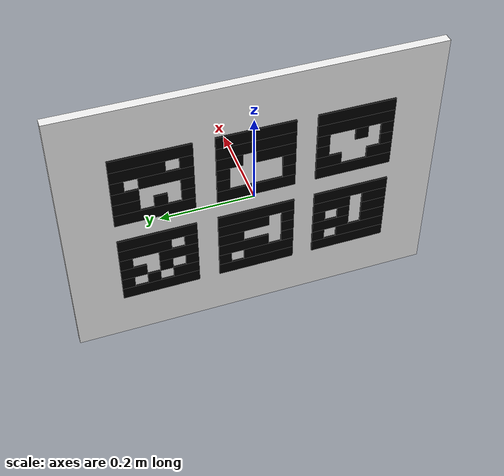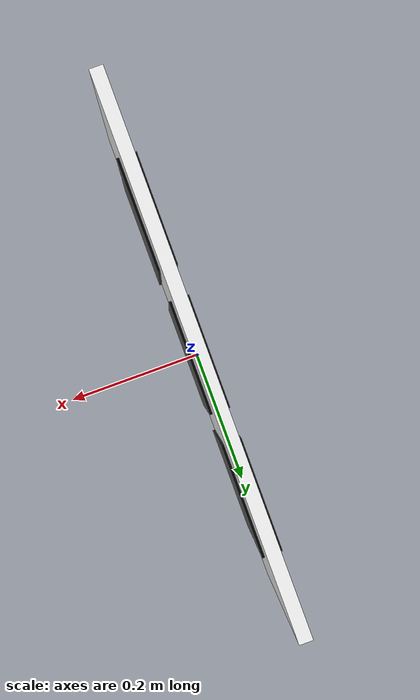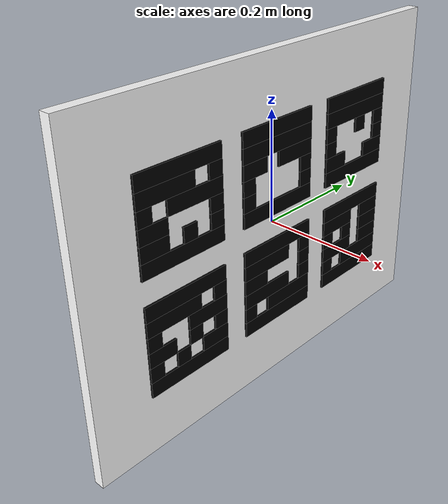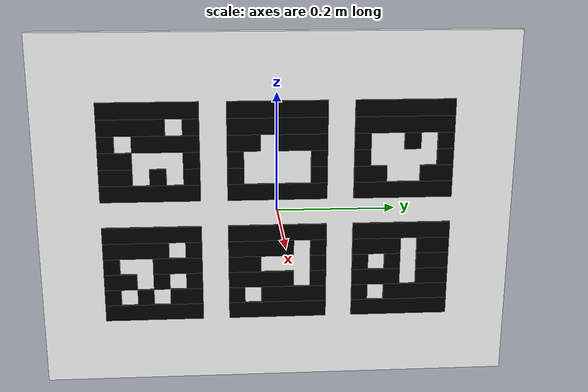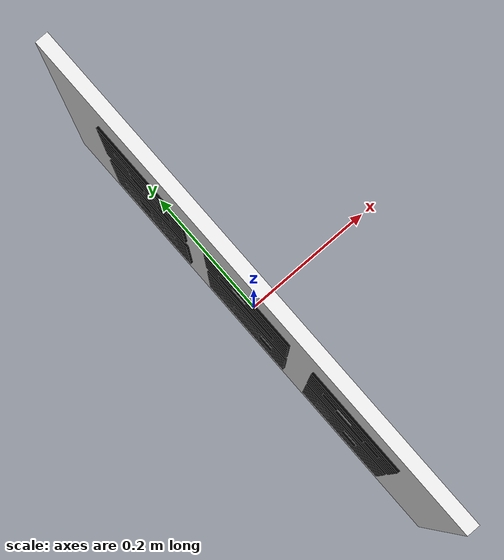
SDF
<sdf version="1.8">
 <model name="aruco_station_F2_ids_36_41">
  <static>true</static>
  <link name="target_link">
   <visual name="white_board_base">
    <cast_shadows>false</cast_shadows>
    <geometry><box><size>0.02000000 0.80000000 0.60000000</size></box></geometry>
    <material>
     <ambient>1 1 1 1</ambient>
     <diffuse>1 1 1 1</diffuse>
     <specular>0 0 0 1</specular>
     <emissive>1 1 1 1</emissive>
    </material>
   </visual>
   <visual name="black_cell_front_plus_x_id36_r0_c0_6">
    <cast_shadows>false</cast_shadows>
    <pose>0.01300000 -0.21111111 0.17500000 0.00000000 0.00000000 0.00000000</pose>
    <geometry><box><size>0.00400000 0.16666667 0.02777778</size></box></geometry>
    <material>
     <ambient>0 0 0 1</ambient>
     <diffuse>0 0 0 1</diffuse>
     <specular>0 0 0 1</specular>
     <emissive>0 0 0 1</emissive>
    </material>
   </visual>
   <visual name="black_cell_front_plus_x_id36_r1_c0_4">
    <cast_shadows>false</cast_shadows>
    <pose>0.01300000 -0.23888889 0.14722222 0.00000000 0.00000000 0.00000000</pose>
    <geometry><box><size>0.00400000 0.11111111 0.02777778</size></box></geometry>
    <material>
     <ambient>0 0 0 1</ambient>
     <diffuse>0 0 0 1</diffuse>
     <specular>0 0 0 1</specular>
     <emissive>0 0 0 1</emissive>
    </material>
   </visual>
   <visual name="black_cell_front_plus_x_id36_r1_c5_6">
    <cast_shadows>false</cast_shadows>
    <pose>0.01300000 -0.14166667 0.14722222 0.00000000 0.00000000 0.00000000</pose>
    <geometry><box><size>0.00400000 0.02777778 0.02777778</size></box></geometry>
    <material>
     <ambient>0 0 0 1</ambient>
     <diffuse>0 0 0 1</diffuse>
     <specular>0 0 0 1</specular>
     <emissive>0 0 0 1</emissive>
    </material>
   </visual>
   <visual name="black_cell_front_plus_x_id36_r2_c0_1">
    <cast_shadows>false</cast_shadows>
    <pose>0.01300000 -0.28055556 0.11944444 0.00000000 0.00000000 0.00000000</pose>
    <geometry><box><size>0.00400000 0.02777778 0.02777778</size></box></geometry>
    <material>
     <ambient>0 0 0 1</ambient>
     <diffuse>0 0 0 1</diffuse>
     <specular>0 0 0 1</specular>
     <emissive>0 0 0 1</emissive>
    </material>
   </visual>
   <visual name="black_cell_front_plus_x_id36_r2_c2_6">
    <cast_shadows>false</cast_shadows>
    <pose>0.01300000 -0.18333333 0.11944444 0.00000000 0.00000000 0.00000000</pose>
    <geometry><box><size>0.00400000 0.11111111 0.02777778</size></box></geometry>
    <material>
     <ambient>0 0 0 1</ambient>
     <diffuse>0 0 0 1</diffuse>
     <specular>0 0 0 1</specular>
     <emissive>0 0 0 1</emissive>
    </material>
   </visual>
   <visual name="black_cell_front_plus_x_id36_r3_c0_2">
    <cast_shadows>false</cast_shadows>
    <pose>0.01300000 -0.26666667 0.09166667 0.00000000 0.00000000 0.00000000</pose>
    <geometry><box><size>0.00400000 0.05555556 0.02777778</size></box></geometry>
    <material>
     <ambient>0 0 0 1</ambient>
     <diffuse>0 0 0 1</diffuse>
     <specular>0 0 0 1</specular>
     <emissive>0 0 0 1</emissive>
    </material>
   </visual>
   <visual name="black_cell_front_plus_x_id36_r3_c5_6">
    <cast_shadows>false</cast_shadows>
    <pose>0.01300000 -0.14166667 0.09166667 0.00000000 0.00000000 0.00000000</pose>
    <geometry><box><size>0.00400000 0.02777778 0.02777778</size></box></geometry>
    <material>
     <ambient>0 0 0 1</ambient>
     <diffuse>0 0 0 1</diffuse>
     <specular>0 0 0 1</specular>
     <emissive>0 0 0 1</emissive>
    </material>
   </visual>
   <visual name="black_cell_front_plus_x_id36_r4_c0_2">
    <cast_shadows>false</cast_shadows>
    <pose>0.01300000 -0.26666667 0.06388889 0.00000000 0.00000000 0.00000000</pose>
    <geometry><box><size>0.00400000 0.05555556 0.02777778</size></box></geometry>
    <material>
     <ambient>0 0 0 1</ambient>
     <diffuse>0 0 0 1</diffuse>
     <specular>0 0 0 1</specular>
     <emissive>0 0 0 1</emissive>
    </material>
   </visual>
   <visual name="black_cell_front_plus_x_id36_r4_c3_4">
    <cast_shadows>false</cast_shadows>
    <pose>0.01300000 -0.19722222 0.06388889 0.00000000 0.00000000 0.00000000</pose>
    <geometry><box><size>0.00400000 0.02777778 0.02777778</size></box></geometry>
    <material>
     <ambient>0 0 0 1</ambient>
     <diffuse>0 0 0 1</diffuse>
     <specular>0 0 0 1</specular>
     <emissive>0 0 0 1</emissive>
    </material>
   </visual>
   <visual name="black_cell_front_plus_x_id36_r4_c5_6">
    <cast_shadows>false</cast_shadows>
    <pose>0.01300000 -0.14166667 0.06388889 0.00000000 0.00000000 0.00000000</pose>
    <geometry><box><size>0.00400000 0.02777778 0.02777778</size></box></geometry>
    <material>
     <ambient>0 0 0 1</ambient>
     <diffuse>0 0 0 1</diffuse>
     <specular>0 0 0 1</specular>
     <emissive>0 0 0 1</emissive>
    </material>
   </visual>
   <visual name="black_cell_front_plus_x_id36_r5_c0_6">
    <cast_shadows>false</cast_shadows>
    <pose>0.01300000 -0.21111111 0.03611111 0.00000000 0.00000000 0.00000000</pose>
    <geometry><box><size>0.00400000 0.16666667 0.02777778</size></box></geometry>
    <material>
     <ambient>0 0 0 1</ambient>
     <diffuse>0 0 0 1</diffuse>
     <specular>0 0 0 1</specular>
     <emissive>0 0 0 1</emissive>
    </material>
   </visual>
   <visual name="black_cell_back_minus_x_id36_r0_c0_6">
    <cast_shadows>false</cast_shadows>
    <pose>-0.01300000 0.21111111 0.17500000 0.00000000 0.00000000 0.00000000</pose>
    <geometry><box><size>0.00400000 0.16666667 0.02777778</size></box></geometry>
    <material>
     <ambient>0 0 0 1</ambient>
     <diffuse>0 0 0 1</diffuse>
     <specular>0 0 0 1</specular>
     <emissive>0 0 0 1</emissive>
    </material>
   </visual>
   <visual name="black_cell_back_minus_x_id36_r1_c0_4">
    <cast_shadows>false</cast_shadows>
    <pose>-0.01300000 0.23888889 0.14722222 0.00000000 0.00000000 0.00000000</pose>
    <geometry><box><size>0.00400000 0.11111111 0.02777778</size></box></geometry>
    <material>
     <ambient>0 0 0 1</ambient>
     <diffuse>0 0 0 1</diffuse>
     <specular>0 0 0 1</specular>
     <emissive>0 0 0 1</emissive>
    </material>
   </visual>
   <visual name="black_cell_back_minus_x_id36_r1_c5_6">
    <cast_shadows>false</cast_shadows>
    <pose>-0.01300000 0.14166667 0.14722222 0.00000000 0.00000000 0.00000000</pose>
    <geometry><box><size>0.00400000 0.02777778 0.02777778</size></box></geometry>
    <material>
     <ambient>0 0 0 1</ambient>
     <diffuse>0 0 0 1</diffuse>
     <specular>0 0 0 1</specular>
     <emissive>0 0 0 1</emissive>
    </material>
   </visual>
   <visual name="black_cell_back_minus_x_id36_r2_c0_1">
    <cast_shadows>false</cast_shadows>
    <pose>-0.01300000 0.28055556 0.11944444 0.00000000 0.00000000 0.00000000</pose>
    <geometry><box><size>0.00400000 0.02777778 0.02777778</size></box></geometry>
    <material>
     <ambient>0 0 0 1</ambient>
     <diffuse>0 0 0 1</diffuse>
     <specular>0 0 0 1</specular>
     <emissive>0 0 0 1</emissive>
    </material>
   </visual>
   <visual name="black_cell_back_minus_x_id36_r2_c2_6">
    <cast_shadows>false</cast_shadows>
    <pose>-0.01300000 0.18333333 0.11944444 0.00000000 0.00000000 0.00000000</pose>
    <geometry><box><size>0.00400000 0.11111111 0.02777778</size></box></geometry>
    <material>
     <ambient>0 0 0 1</ambient>
     <diffuse>0 0 0 1</diffuse>
     <specular>0 0 0 1</specular>
     <emissive>0 0 0 1</emissive>
    </material>
   </visual>
   <visual name="black_cell_back_minus_x_id36_r3_c0_2">
    <cast_shadows>false</cast_shadows>
    <pose>-0.01300000 0.26666667 0.09166667 0.00000000 0.00000000 0.00000000</pose>
    <geometry><box><size>0.00400000 0.05555556 0.02777778</size></box></geometry>
    <material>
     <ambient>0 0 0 1</ambient>
     <diffuse>0 0 0 1</diffuse>
     <specular>0 0 0 1</specular>
     <emissive>0 0 0 1</emissive>
    </material>
   </visual>
   <visual name="black_cell_back_minus_x_id36_r3_c5_6">
    <cast_shadows>false</cast_shadows>
    <pose>-0.01300000 0.14166667 0.09166667 0.00000000 0.00000000 0.00000000</pose>
    <geometry><box><size>0.00400000 0.02777778 0.02777778</size></box></geometry>
    <material>
     <ambient>0 0 0 1</ambient>
     <diffuse>0 0 0 1</diffuse>
     <specular>0 0 0 1</specular>
     <emissive>0 0 0 1</emissive>
    </material>
   </visual>
   <visual name="black_cell_back_minus_x_id36_r4_c0_2">
    <cast_shadows>false</cast_shadows>
    <pose>-0.01300000 0.26666667 0.06388889 0.00000000 0.00000000 0.00000000</pose>
    <geometry><box><size>0.00400000 0.05555556 0.02777778</size></box></geometry>
    <material>
     <ambient>0 0 0 1</ambient>
     <diffuse>0 0 0 1</diffuse>
     <specular>0 0 0 1</specular>
     <emissive>0 0 0 1</emissive>
    </material>
   </visual>
   <visual name="black_cell_back_minus_x_id36_r4_c3_4">
    <cast_shadows>false</cast_shadows>
    <pose>-0.01300000 0.19722222 0.06388889 0.00000000 0.00000000 0.00000000</pose>
    <geometry><box><size>0.00400000 0.02777778 0.02777778</size></box></geometry>
    <material>
     <ambient>0 0 0 1</ambient>
     <diffuse>0 0 0 1</diffuse>
     <specular>0 0 0 1</specular>
     <emissive>0 0 0 1</emissive>
    </material>
   </visual>
   <visual name="black_cell_back_minus_x_id36_r4_c5_6">
    <cast_shadows>false</cast_shadows>
    <pose>-0.01300000 0.14166667 0.06388889 0.00000000 0.00000000 0.00000000</pose>
    <geometry><box><size>0.00400000 0.02777778 0.02777778</size></box></geometry>
    <material>
     <ambient>0 0 0 1</ambient>
     <diffuse>0 0 0 1</diffuse>
     <specular>0 0 0 1</specular>
     <emissive>0 0 0 1</emissive>
    </material>
   </visual>
   <visual name="black_cell_back_minus_x_id36_r5_c0_6">
    <cast_shadows>false</cast_shadows>
    <pose>-0.01300000 0.21111111 0.03611111 0.00000000 0.00000000 0.00000000</pose>
    <geometry><box><size>0.00400000 0.16666667 0.02777778</size></box></geometry>
    <material>
     <ambient>0 0 0 1</ambient>
     <diffuse>0 0 0 1</diffuse>
     <specular>0 0 0 1</specular>
     <emissive>0 0 0 1</emissive>
    </material>
   </visual>
   <visual name="black_cell_front_plus_x_id37_r0_c0_6">
    <cast_shadows>false</cast_shadows>
    <pose>0.01300000 -0.00000000 0.17500000 0.00000000 0.00000000 0.00000000</pose>
    <geometry><box><size>0.00400000 0.16666667 0.02777778</size></box></geometry>
    <material>
     <ambient>0 0 0 1</ambient>
     <diffuse>0 0 0 1</diffuse>
     <specular>0 0 0 1</specular>
     <emissive>0 0 0 1</emissive>
    </material>
   </visual>
   <visual name="black_cell_front_plus_x_id37_r1_c0_6">
    <cast_shadows>false</cast_shadows>
    <pose>0.01300000 -0.00000000 0.14722222 0.00000000 0.00000000 0.00000000</pose>
    <geometry><box><size>0.00400000 0.16666667 0.02777778</size></box></geometry>
    <material>
     <ambient>0 0 0 1</ambient>
     <diffuse>0 0 0 1</diffuse>
     <specular>0 0 0 1</specular>
     <emissive>0 0 0 1</emissive>
    </material>
   </visual>
   <visual name="black_cell_front_plus_x_id37_r2_c0_2">
    <cast_shadows>false</cast_shadows>
    <pose>0.01300000 -0.05555556 0.11944444 0.00000000 0.00000000 0.00000000</pose>
    <geometry><box><size>0.00400000 0.05555556 0.02777778</size></box></geometry>
    <material>
     <ambient>0 0 0 1</ambient>
     <diffuse>0 0 0 1</diffuse>
     <specular>0 0 0 1</specular>
     <emissive>0 0 0 1</emissive>
    </material>
   </visual>
   <visual name="black_cell_front_plus_x_id37_r2_c3_6">
    <cast_shadows>false</cast_shadows>
    <pose>0.01300000 0.04166667 0.11944444 0.00000000 0.00000000 0.00000000</pose>
    <geometry><box><size>0.00400000 0.08333333 0.02777778</size></box></geometry>
    <material>
     <ambient>0 0 0 1</ambient>
     <diffuse>0 0 0 1</diffuse>
     <specular>0 0 0 1</specular>
     <emissive>0 0 0 1</emissive>
    </material>
   </visual>
   <visual name="black_cell_front_plus_x_id37_r3_c0_1">
    <cast_shadows>false</cast_shadows>
    <pose>0.01300000 -0.06944444 0.09166667 0.00000000 0.00000000 0.00000000</pose>
    <geometry><box><size>0.00400000 0.02777778 0.02777778</size></box></geometry>
    <material>
     <ambient>0 0 0 1</ambient>
     <diffuse>0 0 0 1</diffuse>
     <specular>0 0 0 1</specular>
     <emissive>0 0 0 1</emissive>
    </material>
   </visual>
   <visual name="black_cell_front_plus_x_id37_r3_c5_6">
    <cast_shadows>false</cast_shadows>
    <pose>0.01300000 0.06944444 0.09166667 0.00000000 0.00000000 0.00000000</pose>
    <geometry><box><size>0.00400000 0.02777778 0.02777778</size></box></geometry>
    <material>
     <ambient>0 0 0 1</ambient>
     <diffuse>0 0 0 1</diffuse>
     <specular>0 0 0 1</specular>
     <emissive>0 0 0 1</emissive>
    </material>
   </visual>
   <visual name="black_cell_front_plus_x_id37_r4_c0_1">
    <cast_shadows>false</cast_shadows>
    <pose>0.01300000 -0.06944444 0.06388889 0.00000000 0.00000000 0.00000000</pose>
    <geometry><box><size>0.00400000 0.02777778 0.02777778</size></box></geometry>
    <material>
     <ambient>0 0 0 1</ambient>
     <diffuse>0 0 0 1</diffuse>
     <specular>0 0 0 1</specular>
     <emissive>0 0 0 1</emissive>
    </material>
   </visual>
   <visual name="black_cell_front_plus_x_id37_r4_c5_6">
    <cast_shadows>false</cast_shadows>
    <pose>0.01300000 0.06944444 0.06388889 0.00000000 0.00000000 0.00000000</pose>
    <geometry><box><size>0.00400000 0.02777778 0.02777778</size></box></geometry>
    <material>
     <ambient>0 0 0 1</ambient>
     <diffuse>0 0 0 1</diffuse>
     <specular>0 0 0 1</specular>
     <emissive>0 0 0 1</emissive>
    </material>
   </visual>
   <visual name="black_cell_front_plus_x_id37_r5_c0_6">
    <cast_shadows>false</cast_shadows>
    <pose>0.01300000 -0.00000000 0.03611111 0.00000000 0.00000000 0.00000000</pose>
    <geometry><box><size>0.00400000 0.16666667 0.02777778</size></box></geometry>
    <material>
     <ambient>0 0 0 1</ambient>
     <diffuse>0 0 0 1</diffuse>
     <specular>0 0 0 1</specular>
     <emissive>0 0 0 1</emissive>
    </material>
   </visual>
   <visual name="black_cell_back_minus_x_id37_r0_c0_6">
    <cast_shadows>false</cast_shadows>
    <pose>-0.01300000 0.00000000 0.17500000 0.00000000 0.00000000 0.00000000</pose>
    <geometry><box><size>0.00400000 0.16666667 0.02777778</size></box></geometry>
    <material>
     <ambient>0 0 0 1</ambient>
     <diffuse>0 0 0 1</diffuse>
     <specular>0 0 0 1</specular>
     <emissive>0 0 0 1</emissive>
    </material>
   </visual>
   <visual name="black_cell_back_minus_x_id37_r1_c0_6">
    <cast_shadows>false</cast_shadows>
    <pose>-0.01300000 0.00000000 0.14722222 0.00000000 0.00000000 0.00000000</pose>
    <geometry><box><size>0.00400000 0.16666667 0.02777778</size></box></geometry>
    <material>
     <ambient>0 0 0 1</ambient>
     <diffuse>0 0 0 1</diffuse>
     <specular>0 0 0 1</specular>
     <emissive>0 0 0 1</emissive>
    </material>
   </visual>
   <visual name="black_cell_back_minus_x_id37_r2_c0_2">
    <cast_shadows>false</cast_shadows>
    <pose>-0.01300000 0.05555556 0.11944444 0.00000000 0.00000000 0.00000000</pose>
    <geometry><box><size>0.00400000 0.05555556 0.02777778</size></box></geometry>
    <material>
     <ambient>0 0 0 1</ambient>
     <diffuse>0 0 0 1</diffuse>
     <specular>0 0 0 1</specular>
     <emissive>0 0 0 1</emissive>
    </material>
   </visual>
   <visual name="black_cell_back_minus_x_id37_r2_c3_6">
    <cast_shadows>false</cast_shadows>
    <pose>-0.01300000 -0.04166667 0.11944444 0.00000000 0.00000000 0.00000000</pose>
    <geometry><box><size>0.00400000 0.08333333 0.02777778</size></box></geometry>
    <material>
     <ambient>0 0 0 1</ambient>
     <diffuse>0 0 0 1</diffuse>
     <specular>0 0 0 1</specular>
     <emissive>0 0 0 1</emissive>
    </material>
   </visual>
   <visual name="black_cell_back_minus_x_id37_r3_c0_1">
    <cast_shadows>false</cast_shadows>
    <pose>-0.01300000 0.06944444 0.09166667 0.00000000 0.00000000 0.00000000</pose>
    <geometry><box><size>0.00400000 0.02777778 0.02777778</size></box></geometry>
    <material>
     <ambient>0 0 0 1</ambient>
     <diffuse>0 0 0 1</diffuse>
     <specular>0 0 0 1</specular>
     <emissive>0 0 0 1</emissive>
    </material>
   </visual>
   <visual name="black_cell_back_minus_x_id37_r3_c5_6">
    <cast_shadows>false</cast_shadows>
    <pose>-0.01300000 -0.06944444 0.09166667 0.00000000 0.00000000 0.00000000</pose>
    <geometry><box><size>0.00400000 0.02777778 0.02777778</size></box></geometry>
    <material>
     <ambient>0 0 0 1</ambient>
     <diffuse>0 0 0 1</diffuse>
     <specular>0 0 0 1</specular>
     <emissive>0 0 0 1</emissive>
    </material>
   </visual>
   <visual name="black_cell_back_minus_x_id37_r4_c0_1">
    <cast_shadows>false</cast_shadows>
    <pose>-0.01300000 0.06944444 0.06388889 0.00000000 0.00000000 0.00000000</pose>
    <geometry><box><size>0.00400000 0.02777778 0.02777778</size></box></geometry>
    <material>
     <ambient>0 0 0 1</ambient>
     <diffuse>0 0 0 1</diffuse>
     <specular>0 0 0 1</specular>
     <emissive>0 0 0 1</emissive>
    </material>
   </visual>
   <visual name="black_cell_back_minus_x_id37_r4_c5_6">
    <cast_shadows>false</cast_shadows>
    <pose>-0.01300000 -0.06944444 0.06388889 0.00000000 0.00000000 0.00000000</pose>
    <geometry><box><size>0.00400000 0.02777778 0.02777778</size></box></geometry>
    <material>
     <ambient>0 0 0 1</ambient>
     <diffuse>0 0 0 1</diffuse>
     <specular>0 0 0 1</specular>
     <emissive>0 0 0 1</emissive>
    </material>
   </visual>
   <visual name="black_cell_back_minus_x_id37_r5_c0_6">
    <cast_shadows>false</cast_shadows>
    <pose>-0.01300000 0.00000000 0.03611111 0.00000000 0.00000000 0.00000000</pose>
    <geometry><box><size>0.00400000 0.16666667 0.02777778</size></box></geometry>
    <material>
     <ambient>0 0 0 1</ambient>
     <diffuse>0 0 0 1</diffuse>
     <specular>0 0 0 1</specular>
     <emissive>0 0 0 1</emissive>
    </material>
   </visual>
   <visual name="black_cell_front_plus_x_id38_r0_c0_6">
    <cast_shadows>false</cast_shadows>
    <pose>0.01300000 0.21111111 0.17500000 0.00000000 0.00000000 0.00000000</pose>
    <geometry><box><size>0.00400000 0.16666667 0.02777778</size></box></geometry>
    <material>
     <ambient>0 0 0 1</ambient>
     <diffuse>0 0 0 1</diffuse>
     <specular>0 0 0 1</specular>
     <emissive>0 0 0 1</emissive>
    </material>
   </visual>
   <visual name="black_cell_front_plus_x_id38_r1_c0_6">
    <cast_shadows>false</cast_shadows>
    <pose>0.01300000 0.21111111 0.14722222 0.00000000 0.00000000 0.00000000</pose>
    <geometry><box><size>0.00400000 0.16666667 0.02777778</size></box></geometry>
    <material>
     <ambient>0 0 0 1</ambient>
     <diffuse>0 0 0 1</diffuse>
     <specular>0 0 0 1</specular>
     <emissive>0 0 0 1</emissive>
    </material>
   </visual>
   <visual name="black_cell_front_plus_x_id38_r2_c0_1">
    <cast_shadows>false</cast_shadows>
    <pose>0.01300000 0.14166667 0.11944444 0.00000000 0.00000000 0.00000000</pose>
    <geometry><box><size>0.00400000 0.02777778 0.02777778</size></box></geometry>
    <material>
     <ambient>0 0 0 1</ambient>
     <diffuse>0 0 0 1</diffuse>
     <specular>0 0 0 1</specular>
     <emissive>0 0 0 1</emissive>
    </material>
   </visual>
   <visual name="black_cell_front_plus_x_id38_r2_c3_4">
    <cast_shadows>false</cast_shadows>
    <pose>0.01300000 0.22500000 0.11944444 0.00000000 0.00000000 0.00000000</pose>
    <geometry><box><size>0.00400000 0.02777778 0.02777778</size></box></geometry>
    <material>
     <ambient>0 0 0 1</ambient>
     <diffuse>0 0 0 1</diffuse>
     <specular>0 0 0 1</specular>
     <emissive>0 0 0 1</emissive>
    </material>
   </visual>
   <visual name="black_cell_front_plus_x_id38_r2_c5_6">
    <cast_shadows>false</cast_shadows>
    <pose>0.01300000 0.28055556 0.11944444 0.00000000 0.00000000 0.00000000</pose>
    <geometry><box><size>0.00400000 0.02777778 0.02777778</size></box></geometry>
    <material>
     <ambient>0 0 0 1</ambient>
     <diffuse>0 0 0 1</diffuse>
     <specular>0 0 0 1</specular>
     <emissive>0 0 0 1</emissive>
    </material>
   </visual>
   <visual name="black_cell_front_plus_x_id38_r3_c0_1">
    <cast_shadows>false</cast_shadows>
    <pose>0.01300000 0.14166667 0.09166667 0.00000000 0.00000000 0.00000000</pose>
    <geometry><box><size>0.00400000 0.02777778 0.02777778</size></box></geometry>
    <material>
     <ambient>0 0 0 1</ambient>
     <diffuse>0 0 0 1</diffuse>
     <specular>0 0 0 1</specular>
     <emissive>0 0 0 1</emissive>
    </material>
   </visual>
   <visual name="black_cell_front_plus_x_id38_r3_c5_6">
    <cast_shadows>false</cast_shadows>
    <pose>0.01300000 0.28055556 0.09166667 0.00000000 0.00000000 0.00000000</pose>
    <geometry><box><size>0.00400000 0.02777778 0.02777778</size></box></geometry>
    <material>
     <ambient>0 0 0 1</ambient>
     <diffuse>0 0 0 1</diffuse>
     <specular>0 0 0 1</specular>
     <emissive>0 0 0 1</emissive>
    </material>
   </visual>
   <visual name="black_cell_front_plus_x_id38_r4_c0_2">
    <cast_shadows>false</cast_shadows>
    <pose>0.01300000 0.15555556 0.06388889 0.00000000 0.00000000 0.00000000</pose>
    <geometry><box><size>0.00400000 0.05555556 0.02777778</size></box></geometry>
    <material>
     <ambient>0 0 0 1</ambient>
     <diffuse>0 0 0 1</diffuse>
     <specular>0 0 0 1</specular>
     <emissive>0 0 0 1</emissive>
    </material>
   </visual>
   <visual name="black_cell_front_plus_x_id38_r4_c4_6">
    <cast_shadows>false</cast_shadows>
    <pose>0.01300000 0.26666667 0.06388889 0.00000000 0.00000000 0.00000000</pose>
    <geometry><box><size>0.00400000 0.05555556 0.02777778</size></box></geometry>
    <material>
     <ambient>0 0 0 1</ambient>
     <diffuse>0 0 0 1</diffuse>
     <specular>0 0 0 1</specular>
     <emissive>0 0 0 1</emissive>
    </material>
   </visual>
   <visual name="black_cell_front_plus_x_id38_r5_c0_6">
    <cast_shadows>false</cast_shadows>
    <pose>0.01300000 0.21111111 0.03611111 0.00000000 0.00000000 0.00000000</pose>
    <geometry><box><size>0.00400000 0.16666667 0.02777778</size></box></geometry>
    <material>
     <ambient>0 0 0 1</ambient>
     <diffuse>0 0 0 1</diffuse>
     <specular>0 0 0 1</specular>
     <emissive>0 0 0 1</emissive>
    </material>
   </visual>
   <visual name="black_cell_back_minus_x_id38_r0_c0_6">
    <cast_shadows>false</cast_shadows>
    <pose>-0.01300000 -0.21111111 0.17500000 0.00000000 0.00000000 0.00000000</pose>
    <geometry><box><size>0.00400000 0.16666667 0.02777778</size></box></geometry>
    <material>
     <ambient>0 0 0 1</ambient>
     <diffuse>0 0 0 1</diffuse>
     <specular>0 0 0 1</specular>
     <emissive>0 0 0 1</emissive>
    </material>
   </visual>
   <visual name="black_cell_back_minus_x_id38_r1_c0_6">
    <cast_shadows>false</cast_shadows>
    <pose>-0.01300000 -0.21111111 0.14722222 0.00000000 0.00000000 0.00000000</pose>
    <geometry><box><size>0.00400000 0.16666667 0.02777778</size></box></geometry>
    <material>
     <ambient>0 0 0 1</ambient>
     <diffuse>0 0 0 1</diffuse>
     <specular>0 0 0 1</specular>
     <emissive>0 0 0 1</emissive>
    </material>
   </visual>
   <visual name="black_cell_back_minus_x_id38_r2_c0_1">
    <cast_shadows>false</cast_shadows>
    <pose>-0.01300000 -0.14166667 0.11944444 0.00000000 0.00000000 0.00000000</pose>
    <geometry><box><size>0.00400000 0.02777778 0.02777778</size></box></geometry>
    <material>
     <ambient>0 0 0 1</ambient>
     <diffuse>0 0 0 1</diffuse>
     <specular>0 0 0 1</specular>
     <emissive>0 0 0 1</emissive>
    </material>
   </visual>
   <visual name="black_cell_back_minus_x_id38_r2_c3_4">
    <cast_shadows>false</cast_shadows>
    <pose>-0.01300000 -0.22500000 0.11944444 0.00000000 0.00000000 0.00000000</pose>
    <geometry><box><size>0.00400000 0.02777778 0.02777778</size></box></geometry>
    <material>
     <ambient>0 0 0 1</ambient>
     <diffuse>0 0 0 1</diffuse>
     <specular>0 0 0 1</specular>
     <emissive>0 0 0 1</emissive>
    </material>
   </visual>
   <visual name="black_cell_back_minus_x_id38_r2_c5_6">
    <cast_shadows>false</cast_shadows>
    <pose>-0.01300000 -0.28055556 0.11944444 0.00000000 0.00000000 0.00000000</pose>
    <geometry><box><size>0.00400000 0.02777778 0.02777778</size></box></geometry>
    <material>
     <ambient>0 0 0 1</ambient>
     <diffuse>0 0 0 1</diffuse>
     <specular>0 0 0 1</specular>
     <emissive>0 0 0 1</emissive>
    </material>
   </visual>
   <visual name="black_cell_back_minus_x_id38_r3_c0_1">
    <cast_shadows>false</cast_shadows>
    <pose>-0.01300000 -0.14166667 0.09166667 0.00000000 0.00000000 0.00000000</pose>
    <geometry><box><size>0.00400000 0.02777778 0.02777778</size></box></geometry>
    <material>
     <ambient>0 0 0 1</ambient>
     <diffuse>0 0 0 1</diffuse>
     <specular>0 0 0 1</specular>
     <emissive>0 0 0 1</emissive>
    </material>
   </visual>
   <visual name="black_cell_back_minus_x_id38_r3_c5_6">
    <cast_shadows>false</cast_shadows>
    <pose>-0.01300000 -0.28055556 0.09166667 0.00000000 0.00000000 0.00000000</pose>
    <geometry><box><size>0.00400000 0.02777778 0.02777778</size></box></geometry>
    <material>
     <ambient>0 0 0 1</ambient>
     <diffuse>0 0 0 1</diffuse>
     <specular>0 0 0 1</specular>
     <emissive>0 0 0 1</emissive>
    </material>
   </visual>
   <visual name="black_cell_back_minus_x_id38_r4_c0_2">
    <cast_shadows>false</cast_shadows>
    <pose>-0.01300000 -0.15555556 0.06388889 0.00000000 0.00000000 0.00000000</pose>
    <geometry><box><size>0.00400000 0.05555556 0.02777778</size></box></geometry>
    <material>
     <ambient>0 0 0 1</ambient>
     <diffuse>0 0 0 1</diffuse>
     <specular>0 0 0 1</specular>
     <emissive>0 0 0 1</emissive>
    </material>
   </visual>
   <visual name="black_cell_back_minus_x_id38_r4_c4_6">
    <cast_shadows>false</cast_shadows>
    <pose>-0.01300000 -0.26666667 0.06388889 0.00000000 0.00000000 0.00000000</pose>
    <geometry><box><size>0.00400000 0.05555556 0.02777778</size></box></geometry>
    <material>
     <ambient>0 0 0 1</ambient>
     <diffuse>0 0 0 1</diffuse>
     <specular>0 0 0 1</specular>
     <emissive>0 0 0 1</emissive>
    </material>
   </visual>
   <visual name="black_cell_back_minus_x_id38_r5_c0_6">
    <cast_shadows>false</cast_shadows>
    <pose>-0.01300000 -0.21111111 0.03611111 0.00000000 0.00000000 0.00000000</pose>
    <geometry><box><size>0.00400000 0.16666667 0.02777778</size></box></geometry>
    <material>
     <ambient>0 0 0 1</ambient>
     <diffuse>0 0 0 1</diffuse>
     <specular>0 0 0 1</specular>
     <emissive>0 0 0 1</emissive>
    </material>
   </visual>
   <visual name="black_cell_front_plus_x_id39_r0_c0_6">
    <cast_shadows>false</cast_shadows>
    <pose>0.01300000 -0.21111111 -0.03611111 0.00000000 0.00000000 0.00000000</pose>
    <geometry><box><size>0.00400000 0.16666667 0.02777778</size></box></geometry>
    <material>
     <ambient>0 0 0 1</ambient>
     <diffuse>0 0 0 1</diffuse>
     <specular>0 0 0 1</specular>
     <emissive>0 0 0 1</emissive>
    </material>
   </visual>
   <visual name="black_cell_front_plus_x_id39_r1_c0_4">
    <cast_shadows>false</cast_shadows>
    <pose>0.01300000 -0.23888889 -0.06388889 0.00000000 0.00000000 0.00000000</pose>
    <geometry><box><size>0.00400000 0.11111111 0.02777778</size></box></geometry>
    <material>
     <ambient>0 0 0 1</ambient>
     <diffuse>0 0 0 1</diffuse>
     <specular>0 0 0 1</specular>
     <emissive>0 0 0 1</emissive>
    </material>
   </visual>
   <visual name="black_cell_front_plus_x_id39_r1_c5_6">
    <cast_shadows>false</cast_shadows>
    <pose>0.01300000 -0.14166667 -0.06388889 0.00000000 0.00000000 0.00000000</pose>
    <geometry><box><size>0.00400000 0.02777778 0.02777778</size></box></geometry>
    <material>
     <ambient>0 0 0 1</ambient>
     <diffuse>0 0 0 1</diffuse>
     <specular>0 0 0 1</specular>
     <emissive>0 0 0 1</emissive>
    </material>
   </visual>
   <visual name="black_cell_front_plus_x_id39_r2_c0_1">
    <cast_shadows>false</cast_shadows>
    <pose>0.01300000 -0.28055556 -0.09166667 0.00000000 0.00000000 0.00000000</pose>
    <geometry><box><size>0.00400000 0.02777778 0.02777778</size></box></geometry>
    <material>
     <ambient>0 0 0 1</ambient>
     <diffuse>0 0 0 1</diffuse>
     <specular>0 0 0 1</specular>
     <emissive>0 0 0 1</emissive>
    </material>
   </visual>
   <visual name="black_cell_front_plus_x_id39_r2_c3_6">
    <cast_shadows>false</cast_shadows>
    <pose>0.01300000 -0.16944444 -0.09166667 0.00000000 0.00000000 0.00000000</pose>
    <geometry><box><size>0.00400000 0.08333333 0.02777778</size></box></geometry>
    <material>
     <ambient>0 0 0 1</ambient>
     <diffuse>0 0 0 1</diffuse>
     <specular>0 0 0 1</specular>
     <emissive>0 0 0 1</emissive>
    </material>
   </visual>
   <visual name="black_cell_front_plus_x_id39_r3_c0_2">
    <cast_shadows>false</cast_shadows>
    <pose>0.01300000 -0.26666667 -0.11944444 0.00000000 0.00000000 0.00000000</pose>
    <geometry><box><size>0.00400000 0.05555556 0.02777778</size></box></geometry>
    <material>
     <ambient>0 0 0 1</ambient>
     <diffuse>0 0 0 1</diffuse>
     <specular>0 0 0 1</specular>
     <emissive>0 0 0 1</emissive>
    </material>
   </visual>
   <visual name="black_cell_front_plus_x_id39_r3_c3_4">
    <cast_shadows>false</cast_shadows>
    <pose>0.01300000 -0.19722222 -0.11944444 0.00000000 0.00000000 0.00000000</pose>
    <geometry><box><size>0.00400000 0.02777778 0.02777778</size></box></geometry>
    <material>
     <ambient>0 0 0 1</ambient>
     <diffuse>0 0 0 1</diffuse>
     <specular>0 0 0 1</specular>
     <emissive>0 0 0 1</emissive>
    </material>
   </visual>
   <visual name="black_cell_front_plus_x_id39_r3_c5_6">
    <cast_shadows>false</cast_shadows>
    <pose>0.01300000 -0.14166667 -0.11944444 0.00000000 0.00000000 0.00000000</pose>
    <geometry><box><size>0.00400000 0.02777778 0.02777778</size></box></geometry>
    <material>
     <ambient>0 0 0 1</ambient>
     <diffuse>0 0 0 1</diffuse>
     <specular>0 0 0 1</specular>
     <emissive>0 0 0 1</emissive>
    </material>
   </visual>
   <visual name="black_cell_front_plus_x_id39_r4_c0_1">
    <cast_shadows>false</cast_shadows>
    <pose>0.01300000 -0.28055556 -0.14722222 0.00000000 0.00000000 0.00000000</pose>
    <geometry><box><size>0.00400000 0.02777778 0.02777778</size></box></geometry>
    <material>
     <ambient>0 0 0 1</ambient>
     <diffuse>0 0 0 1</diffuse>
     <specular>0 0 0 1</specular>
     <emissive>0 0 0 1</emissive>
    </material>
   </visual>
   <visual name="black_cell_front_plus_x_id39_r4_c2_3">
    <cast_shadows>false</cast_shadows>
    <pose>0.01300000 -0.22500000 -0.14722222 0.00000000 0.00000000 0.00000000</pose>
    <geometry><box><size>0.00400000 0.02777778 0.02777778</size></box></geometry>
    <material>
     <ambient>0 0 0 1</ambient>
     <diffuse>0 0 0 1</diffuse>
     <specular>0 0 0 1</specular>
     <emissive>0 0 0 1</emissive>
    </material>
   </visual>
   <visual name="black_cell_front_plus_x_id39_r4_c4_6">
    <cast_shadows>false</cast_shadows>
    <pose>0.01300000 -0.15555556 -0.14722222 0.00000000 0.00000000 0.00000000</pose>
    <geometry><box><size>0.00400000 0.05555556 0.02777778</size></box></geometry>
    <material>
     <ambient>0 0 0 1</ambient>
     <diffuse>0 0 0 1</diffuse>
     <specular>0 0 0 1</specular>
     <emissive>0 0 0 1</emissive>
    </material>
   </visual>
   <visual name="black_cell_front_plus_x_id39_r5_c0_6">
    <cast_shadows>false</cast_shadows>
    <pose>0.01300000 -0.21111111 -0.17500000 0.00000000 0.00000000 0.00000000</pose>
    <geometry><box><size>0.00400000 0.16666667 0.02777778</size></box></geometry>
    <material>
     <ambient>0 0 0 1</ambient>
     <diffuse>0 0 0 1</diffuse>
     <specular>0 0 0 1</specular>
     <emissive>0 0 0 1</emissive>
    </material>
   </visual>
   <visual name="black_cell_back_minus_x_id39_r0_c0_6">
    <cast_shadows>false</cast_shadows>
    <pose>-0.01300000 0.21111111 -0.03611111 0.00000000 0.00000000 0.00000000</pose>
    <geometry><box><size>0.00400000 0.16666667 0.02777778</size></box></geometry>
    <material>
     <ambient>0 0 0 1</ambient>
     <diffuse>0 0 0 1</diffuse>
     <specular>0 0 0 1</specular>
     <emissive>0 0 0 1</emissive>
    </material>
   </visual>
   <visual name="black_cell_back_minus_x_id39_r1_c0_4">
    <cast_shadows>false</cast_shadows>
    <pose>-0.01300000 0.23888889 -0.06388889 0.00000000 0.00000000 0.00000000</pose>
    <geometry><box><size>0.00400000 0.11111111 0.02777778</size></box></geometry>
    <material>
     <ambient>0 0 0 1</ambient>
     <diffuse>0 0 0 1</diffuse>
     <specular>0 0 0 1</specular>
     <emissive>0 0 0 1</emissive>
    </material>
   </visual>
   <visual name="black_cell_back_minus_x_id39_r1_c5_6">
    <cast_shadows>false</cast_shadows>
    <pose>-0.01300000 0.14166667 -0.06388889 0.00000000 0.00000000 0.00000000</pose>
    <geometry><box><size>0.00400000 0.02777778 0.02777778</size></box></geometry>
    <material>
     <ambient>0 0 0 1</ambient>
     <diffuse>0 0 0 1</diffuse>
     <specular>0 0 0 1</specular>
     <emissive>0 0 0 1</emissive>
    </material>
   </visual>
   <visual name="black_cell_back_minus_x_id39_r2_c0_1">
    <cast_shadows>false</cast_shadows>
    <pose>-0.01300000 0.28055556 -0.09166667 0.00000000 0.00000000 0.00000000</pose>
    <geometry><box><size>0.00400000 0.02777778 0.02777778</size></box></geometry>
    <material>
     <ambient>0 0 0 1</ambient>
     <diffuse>0 0 0 1</diffuse>
     <specular>0 0 0 1</specular>
     <emissive>0 0 0 1</emissive>
    </material>
   </visual>
   <visual name="black_cell_back_minus_x_id39_r2_c3_6">
    <cast_shadows>false</cast_shadows>
    <pose>-0.01300000 0.16944444 -0.09166667 0.00000000 0.00000000 0.00000000</pose>
    <geometry><box><size>0.00400000 0.08333333 0.02777778</size></box></geometry>
    <material>
     <ambient>0 0 0 1</ambient>
     <diffuse>0 0 0 1</diffuse>
     <specular>0 0 0 1</specular>
     <emissive>0 0 0 1</emissive>
    </material>
   </visual>
   <visual name="black_cell_back_minus_x_id39_r3_c0_2">
    <cast_shadows>false</cast_shadows>
    <pose>-0.01300000 0.26666667 -0.11944444 0.00000000 0.00000000 0.00000000</pose>
    <geometry><box><size>0.00400000 0.05555556 0.02777778</size></box></geometry>
    <material>
     <ambient>0 0 0 1</ambient>
     <diffuse>0 0 0 1</diffuse>
     <specular>0 0 0 1</specular>
     <emissive>0 0 0 1</emissive>
    </material>
   </visual>
   <visual name="black_cell_back_minus_x_id39_r3_c3_4">
    <cast_shadows>false</cast_shadows>
    <pose>-0.01300000 0.19722222 -0.11944444 0.00000000 0.00000000 0.00000000</pose>
    <geometry><box><size>0.00400000 0.02777778 0.02777778</size></box></geometry>
    <material>
     <ambient>0 0 0 1</ambient>
     <diffuse>0 0 0 1</diffuse>
     <specular>0 0 0 1</specular>
     <emissive>0 0 0 1</emissive>
    </material>
   </visual>
   <visual name="black_cell_back_minus_x_id39_r3_c5_6">
    <cast_shadows>false</cast_shadows>
    <pose>-0.01300000 0.14166667 -0.11944444 0.00000000 0.00000000 0.00000000</pose>
    <geometry><box><size>0.00400000 0.02777778 0.02777778</size></box></geometry>
    <material>
     <ambient>0 0 0 1</ambient>
     <diffuse>0 0 0 1</diffuse>
     <specular>0 0 0 1</specular>
     <emissive>0 0 0 1</emissive>
    </material>
   </visual>
   <visual name="black_cell_back_minus_x_id39_r4_c0_1">
    <cast_shadows>false</cast_shadows>
    <pose>-0.01300000 0.28055556 -0.14722222 0.00000000 0.00000000 0.00000000</pose>
    <geometry><box><size>0.00400000 0.02777778 0.02777778</size></box></geometry>
    <material>
     <ambient>0 0 0 1</ambient>
     <diffuse>0 0 0 1</diffuse>
     <specular>0 0 0 1</specular>
     <emissive>0 0 0 1</emissive>
    </material>
   </visual>
   <visual name="black_cell_back_minus_x_id39_r4_c2_3">
    <cast_shadows>false</cast_shadows>
    <pose>-0.01300000 0.22500000 -0.14722222 0.00000000 0.00000000 0.00000000</pose>
    <geometry><box><size>0.00400000 0.02777778 0.02777778</size></box></geometry>
    <material>
     <ambient>0 0 0 1</ambient>
     <diffuse>0 0 0 1</diffuse>
     <specular>0 0 0 1</specular>
     <emissive>0 0 0 1</emissive>
    </material>
   </visual>
   <visual name="black_cell_back_minus_x_id39_r4_c4_6">
    <cast_shadows>false</cast_shadows>
    <pose>-0.01300000 0.15555556 -0.14722222 0.00000000 0.00000000 0.00000000</pose>
    <geometry><box><size>0.00400000 0.05555556 0.02777778</size></box></geometry>
    <material>
     <ambient>0 0 0 1</ambient>
     <diffuse>0 0 0 1</diffuse>
     <specular>0 0 0 1</specular>
     <emissive>0 0 0 1</emissive>
    </material>
   </visual>
   <visual name="black_cell_back_minus_x_id39_r5_c0_6">
    <cast_shadows>false</cast_shadows>
    <pose>-0.01300000 0.21111111 -0.17500000 0.00000000 0.00000000 0.00000000</pose>
    <geometry><box><size>0.00400000 0.16666667 0.02777778</size></box></geometry>
    <material>
     <ambient>0 0 0 1</ambient>
     <diffuse>0 0 0 1</diffuse>
     <specular>0 0 0 1</specular>
     <emissive>0 0 0 1</emissive>
    </material>
   </visual>
   <visual name="black_cell_front_plus_x_id40_r0_c0_6">
    <cast_shadows>false</cast_shadows>
    <pose>0.01300000 -0.00000000 -0.03611111 0.00000000 0.00000000 0.00000000</pose>
    <geometry><box><size>0.00400000 0.16666667 0.02777778</size></box></geometry>
    <material>
     <ambient>0 0 0 1</ambient>
     <diffuse>0 0 0 1</diffuse>
     <specular>0 0 0 1</specular>
     <emissive>0 0 0 1</emissive>
    </material>
   </visual>
   <visual name="black_cell_front_plus_x_id40_r1_c0_4">
    <cast_shadows>false</cast_shadows>
    <pose>0.01300000 -0.02777778 -0.06388889 0.00000000 0.00000000 0.00000000</pose>
    <geometry><box><size>0.00400000 0.11111111 0.02777778</size></box></geometry>
    <material>
     <ambient>0 0 0 1</ambient>
     <diffuse>0 0 0 1</diffuse>
     <specular>0 0 0 1</specular>
     <emissive>0 0 0 1</emissive>
    </material>
   </visual>
   <visual name="black_cell_front_plus_x_id40_r1_c5_6">
    <cast_shadows>false</cast_shadows>
    <pose>0.01300000 0.06944444 -0.06388889 0.00000000 0.00000000 0.00000000</pose>
    <geometry><box><size>0.00400000 0.02777778 0.02777778</size></box></geometry>
    <material>
     <ambient>0 0 0 1</ambient>
     <diffuse>0 0 0 1</diffuse>
     <specular>0 0 0 1</specular>
     <emissive>0 0 0 1</emissive>
    </material>
   </visual>
   <visual name="black_cell_front_plus_x_id40_r2_c0_2">
    <cast_shadows>false</cast_shadows>
    <pose>0.01300000 -0.05555556 -0.09166667 0.00000000 0.00000000 0.00000000</pose>
    <geometry><box><size>0.00400000 0.05555556 0.02777778</size></box></geometry>
    <material>
     <ambient>0 0 0 1</ambient>
     <diffuse>0 0 0 1</diffuse>
     <specular>0 0 0 1</specular>
     <emissive>0 0 0 1</emissive>
    </material>
   </visual>
   <visual name="black_cell_front_plus_x_id40_r2_c5_6">
    <cast_shadows>false</cast_shadows>
    <pose>0.01300000 0.06944444 -0.09166667 0.00000000 0.00000000 0.00000000</pose>
    <geometry><box><size>0.00400000 0.02777778 0.02777778</size></box></geometry>
    <material>
     <ambient>0 0 0 1</ambient>
     <diffuse>0 0 0 1</diffuse>
     <specular>0 0 0 1</specular>
     <emissive>0 0 0 1</emissive>
    </material>
   </visual>
   <visual name="black_cell_front_plus_x_id40_r3_c0_4">
    <cast_shadows>false</cast_shadows>
    <pose>0.01300000 -0.02777778 -0.11944444 0.00000000 0.00000000 0.00000000</pose>
    <geometry><box><size>0.00400000 0.11111111 0.02777778</size></box></geometry>
    <material>
     <ambient>0 0 0 1</ambient>
     <diffuse>0 0 0 1</diffuse>
     <specular>0 0 0 1</specular>
     <emissive>0 0 0 1</emissive>
    </material>
   </visual>
   <visual name="black_cell_front_plus_x_id40_r3_c5_6">
    <cast_shadows>false</cast_shadows>
    <pose>0.01300000 0.06944444 -0.11944444 0.00000000 0.00000000 0.00000000</pose>
    <geometry><box><size>0.00400000 0.02777778 0.02777778</size></box></geometry>
    <material>
     <ambient>0 0 0 1</ambient>
     <diffuse>0 0 0 1</diffuse>
     <specular>0 0 0 1</specular>
     <emissive>0 0 0 1</emissive>
    </material>
   </visual>
   <visual name="black_cell_front_plus_x_id40_r4_c0_1">
    <cast_shadows>false</cast_shadows>
    <pose>0.01300000 -0.06944444 -0.14722222 0.00000000 0.00000000 0.00000000</pose>
    <geometry><box><size>0.00400000 0.02777778 0.02777778</size></box></geometry>
    <material>
     <ambient>0 0 0 1</ambient>
     <diffuse>0 0 0 1</diffuse>
     <specular>0 0 0 1</specular>
     <emissive>0 0 0 1</emissive>
    </material>
   </visual>
   <visual name="black_cell_front_plus_x_id40_r4_c2_6">
    <cast_shadows>false</cast_shadows>
    <pose>0.01300000 0.02777778 -0.14722222 0.00000000 0.00000000 0.00000000</pose>
    <geometry><box><size>0.00400000 0.11111111 0.02777778</size></box></geometry>
    <material>
     <ambient>0 0 0 1</ambient>
     <diffuse>0 0 0 1</diffuse>
     <specular>0 0 0 1</specular>
     <emissive>0 0 0 1</emissive>
    </material>
   </visual>
   <visual name="black_cell_front_plus_x_id40_r5_c0_6">
    <cast_shadows>false</cast_shadows>
    <pose>0.01300000 -0.00000000 -0.17500000 0.00000000 0.00000000 0.00000000</pose>
    <geometry><box><size>0.00400000 0.16666667 0.02777778</size></box></geometry>
    <material>
     <ambient>0 0 0 1</ambient>
     <diffuse>0 0 0 1</diffuse>
     <specular>0 0 0 1</specular>
     <emissive>0 0 0 1</emissive>
    </material>
   </visual>
   <visual name="black_cell_back_minus_x_id40_r0_c0_6">
    <cast_shadows>false</cast_shadows>
    <pose>-0.01300000 0.00000000 -0.03611111 0.00000000 0.00000000 0.00000000</pose>
    <geometry><box><size>0.00400000 0.16666667 0.02777778</size></box></geometry>
    <material>
     <ambient>0 0 0 1</ambient>
     <diffuse>0 0 0 1</diffuse>
     <specular>0 0 0 1</specular>
     <emissive>0 0 0 1</emissive>
    </material>
   </visual>
   <visual name="black_cell_back_minus_x_id40_r1_c0_4">
    <cast_shadows>false</cast_shadows>
    <pose>-0.01300000 0.02777778 -0.06388889 0.00000000 0.00000000 0.00000000</pose>
    <geometry><box><size>0.00400000 0.11111111 0.02777778</size></box></geometry>
    <material>
     <ambient>0 0 0 1</ambient>
     <diffuse>0 0 0 1</diffuse>
     <specular>0 0 0 1</specular>
     <emissive>0 0 0 1</emissive>
    </material>
   </visual>
   <visual name="black_cell_back_minus_x_id40_r1_c5_6">
    <cast_shadows>false</cast_shadows>
    <pose>-0.01300000 -0.06944444 -0.06388889 0.00000000 0.00000000 0.00000000</pose>
    <geometry><box><size>0.00400000 0.02777778 0.02777778</size></box></geometry>
    <material>
     <ambient>0 0 0 1</ambient>
     <diffuse>0 0 0 1</diffuse>
     <specular>0 0 0 1</specular>
     <emissive>0 0 0 1</emissive>
    </material>
   </visual>
   <visual name="black_cell_back_minus_x_id40_r2_c0_2">
    <cast_shadows>false</cast_shadows>
    <pose>-0.01300000 0.05555556 -0.09166667 0.00000000 0.00000000 0.00000000</pose>
    <geometry><box><size>0.00400000 0.05555556 0.02777778</size></box></geometry>
    <material>
     <ambient>0 0 0 1</ambient>
     <diffuse>0 0 0 1</diffuse>
     <specular>0 0 0 1</specular>
     <emissive>0 0 0 1</emissive>
    </material>
   </visual>
   <visual name="black_cell_back_minus_x_id40_r2_c5_6">
    <cast_shadows>false</cast_shadows>
    <pose>-0.01300000 -0.06944444 -0.09166667 0.00000000 0.00000000 0.00000000</pose>
    <geometry><box><size>0.00400000 0.02777778 0.02777778</size></box></geometry>
    <material>
     <ambient>0 0 0 1</ambient>
     <diffuse>0 0 0 1</diffuse>
     <specular>0 0 0 1</specular>
     <emissive>0 0 0 1</emissive>
    </material>
   </visual>
   <visual name="black_cell_back_minus_x_id40_r3_c0_4">
    <cast_shadows>false</cast_shadows>
    <pose>-0.01300000 0.02777778 -0.11944444 0.00000000 0.00000000 0.00000000</pose>
    <geometry><box><size>0.00400000 0.11111111 0.02777778</size></box></geometry>
    <material>
     <ambient>0 0 0 1</ambient>
     <diffuse>0 0 0 1</diffuse>
     <specular>0 0 0 1</specular>
     <emissive>0 0 0 1</emissive>
    </material>
   </visual>
   <visual name="black_cell_back_minus_x_id40_r3_c5_6">
    <cast_shadows>false</cast_shadows>
    <pose>-0.01300000 -0.06944444 -0.11944444 0.00000000 0.00000000 0.00000000</pose>
    <geometry><box><size>0.00400000 0.02777778 0.02777778</size></box></geometry>
    <material>
     <ambient>0 0 0 1</ambient>
     <diffuse>0 0 0 1</diffuse>
     <specular>0 0 0 1</specular>
     <emissive>0 0 0 1</emissive>
    </material>
   </visual>
   <visual name="black_cell_back_minus_x_id40_r4_c0_1">
    <cast_shadows>false</cast_shadows>
    <pose>-0.01300000 0.06944444 -0.14722222 0.00000000 0.00000000 0.00000000</pose>
    <geometry><box><size>0.00400000 0.02777778 0.02777778</size></box></geometry>
    <material>
     <ambient>0 0 0 1</ambient>
     <diffuse>0 0 0 1</diffuse>
     <specular>0 0 0 1</specular>
     <emissive>0 0 0 1</emissive>
    </material>
   </visual>
   <visual name="black_cell_back_minus_x_id40_r4_c2_6">
    <cast_shadows>false</cast_shadows>
    <pose>-0.01300000 -0.02777778 -0.14722222 0.00000000 0.00000000 0.00000000</pose>
    <geometry><box><size>0.00400000 0.11111111 0.02777778</size></box></geometry>
    <material>
     <ambient>0 0 0 1</ambient>
     <diffuse>0 0 0 1</diffuse>
     <specular>0 0 0 1</specular>
     <emissive>0 0 0 1</emissive>
    </material>
   </visual>
   <visual name="black_cell_back_minus_x_id40_r5_c0_6">
    <cast_shadows>false</cast_shadows>
    <pose>-0.01300000 0.00000000 -0.17500000 0.00000000 0.00000000 0.00000000</pose>
    <geometry><box><size>0.00400000 0.16666667 0.02777778</size></box></geometry>
    <material>
     <ambient>0 0 0 1</ambient>
     <diffuse>0 0 0 1</diffuse>
     <specular>0 0 0 1</specular>
     <emissive>0 0 0 1</emissive>
    </material>
   </visual>
   <visual name="black_cell_front_plus_x_id41_r0_c0_6">
    <cast_shadows>false</cast_shadows>
    <pose>0.01300000 0.21111111 -0.03611111 0.00000000 0.00000000 0.00000000</pose>
    <geometry><box><size>0.00400000 0.16666667 0.02777778</size></box></geometry>
    <material>
     <ambient>0 0 0 1</ambient>
     <diffuse>0 0 0 1</diffuse>
     <specular>0 0 0 1</specular>
     <emissive>0 0 0 1</emissive>
    </material>
   </visual>
   <visual name="black_cell_front_plus_x_id41_r1_c0_3">
    <cast_shadows>false</cast_shadows>
    <pose>0.01300000 0.16944444 -0.06388889 0.00000000 0.00000000 0.00000000</pose>
    <geometry><box><size>0.00400000 0.08333333 0.02777778</size></box></geometry>
    <material>
     <ambient>0 0 0 1</ambient>
     <diffuse>0 0 0 1</diffuse>
     <specular>0 0 0 1</specular>
     <emissive>0 0 0 1</emissive>
    </material>
   </visual>
   <visual name="black_cell_front_plus_x_id41_r1_c4_6">
    <cast_shadows>false</cast_shadows>
    <pose>0.01300000 0.26666667 -0.06388889 0.00000000 0.00000000 0.00000000</pose>
    <geometry><box><size>0.00400000 0.05555556 0.02777778</size></box></geometry>
    <material>
     <ambient>0 0 0 1</ambient>
     <diffuse>0 0 0 1</diffuse>
     <specular>0 0 0 1</specular>
     <emissive>0 0 0 1</emissive>
    </material>
   </visual>
   <visual name="black_cell_front_plus_x_id41_r2_c0_1">
    <cast_shadows>false</cast_shadows>
    <pose>0.01300000 0.14166667 -0.09166667 0.00000000 0.00000000 0.00000000</pose>
    <geometry><box><size>0.00400000 0.02777778 0.02777778</size></box></geometry>
    <material>
     <ambient>0 0 0 1</ambient>
     <diffuse>0 0 0 1</diffuse>
     <specular>0 0 0 1</specular>
     <emissive>0 0 0 1</emissive>
    </material>
   </visual>
   <visual name="black_cell_front_plus_x_id41_r2_c2_3">
    <cast_shadows>false</cast_shadows>
    <pose>0.01300000 0.19722222 -0.09166667 0.00000000 0.00000000 0.00000000</pose>
    <geometry><box><size>0.00400000 0.02777778 0.02777778</size></box></geometry>
    <material>
     <ambient>0 0 0 1</ambient>
     <diffuse>0 0 0 1</diffuse>
     <specular>0 0 0 1</specular>
     <emissive>0 0 0 1</emissive>
    </material>
   </visual>
   <visual name="black_cell_front_plus_x_id41_r2_c4_6">
    <cast_shadows>false</cast_shadows>
    <pose>0.01300000 0.26666667 -0.09166667 0.00000000 0.00000000 0.00000000</pose>
    <geometry><box><size>0.00400000 0.05555556 0.02777778</size></box></geometry>
    <material>
     <ambient>0 0 0 1</ambient>
     <diffuse>0 0 0 1</diffuse>
     <specular>0 0 0 1</specular>
     <emissive>0 0 0 1</emissive>
    </material>
   </visual>
   <visual name="black_cell_front_plus_x_id41_r3_c0_3">
    <cast_shadows>false</cast_shadows>
    <pose>0.01300000 0.16944444 -0.11944444 0.00000000 0.00000000 0.00000000</pose>
    <geometry><box><size>0.00400000 0.08333333 0.02777778</size></box></geometry>
    <material>
     <ambient>0 0 0 1</ambient>
     <diffuse>0 0 0 1</diffuse>
     <specular>0 0 0 1</specular>
     <emissive>0 0 0 1</emissive>
    </material>
   </visual>
   <visual name="black_cell_front_plus_x_id41_r3_c4_6">
    <cast_shadows>false</cast_shadows>
    <pose>0.01300000 0.26666667 -0.11944444 0.00000000 0.00000000 0.00000000</pose>
    <geometry><box><size>0.00400000 0.05555556 0.02777778</size></box></geometry>
    <material>
     <ambient>0 0 0 1</ambient>
     <diffuse>0 0 0 1</diffuse>
     <specular>0 0 0 1</specular>
     <emissive>0 0 0 1</emissive>
    </material>
   </visual>
   <visual name="black_cell_front_plus_x_id41_r4_c0_1">
    <cast_shadows>false</cast_shadows>
    <pose>0.01300000 0.14166667 -0.14722222 0.00000000 0.00000000 0.00000000</pose>
    <geometry><box><size>0.00400000 0.02777778 0.02777778</size></box></geometry>
    <material>
     <ambient>0 0 0 1</ambient>
     <diffuse>0 0 0 1</diffuse>
     <specular>0 0 0 1</specular>
     <emissive>0 0 0 1</emissive>
    </material>
   </visual>
   <visual name="black_cell_front_plus_x_id41_r4_c2_6">
    <cast_shadows>false</cast_shadows>
    <pose>0.01300000 0.23888889 -0.14722222 0.00000000 0.00000000 0.00000000</pose>
    <geometry><box><size>0.00400000 0.11111111 0.02777778</size></box></geometry>
    <material>
     <ambient>0 0 0 1</ambient>
     <diffuse>0 0 0 1</diffuse>
     <specular>0 0 0 1</specular>
     <emissive>0 0 0 1</emissive>
    </material>
   </visual>
   <visual name="black_cell_front_plus_x_id41_r5_c0_6">
    <cast_shadows>false</cast_shadows>
    <pose>0.01300000 0.21111111 -0.17500000 0.00000000 0.00000000 0.00000000</pose>
    <geometry><box><size>0.00400000 0.16666667 0.02777778</size></box></geometry>
    <material>
     <ambient>0 0 0 1</ambient>
     <diffuse>0 0 0 1</diffuse>
     <specular>0 0 0 1</specular>
     <emissive>0 0 0 1</emissive>
    </material>
   </visual>
   <visual name="black_cell_back_minus_x_id41_r0_c0_6">
    <cast_shadows>false</cast_shadows>
    <pose>-0.01300000 -0.21111111 -0.03611111 0.00000000 0.00000000 0.00000000</pose>
    <geometry><box><size>0.00400000 0.16666667 0.02777778</size></box></geometry>
    <material>
     <ambient>0 0 0 1</ambient>
     <diffuse>0 0 0 1</diffuse>
     <specular>0 0 0 1</specular>
     <emissive>0 0 0 1</emissive>
    </material>
   </visual>
   <visual name="black_cell_back_minus_x_id41_r1_c0_3">
    <cast_shadows>false</cast_shadows>
    <pose>-0.01300000 -0.16944444 -0.06388889 0.00000000 0.00000000 0.00000000</pose>
    <geometry><box><size>0.00400000 0.08333333 0.02777778</size></box></geometry>
    <material>
     <ambient>0 0 0 1</ambient>
     <diffuse>0 0 0 1</diffuse>
     <specular>0 0 0 1</specular>
     <emissive>0 0 0 1</emissive>
    </material>
   </visual>
   <visual name="black_cell_back_minus_x_id41_r1_c4_6">
    <cast_shadows>false</cast_shadows>
    <pose>-0.01300000 -0.26666667 -0.06388889 0.00000000 0.00000000 0.00000000</pose>
    <geometry><box><size>0.00400000 0.05555556 0.02777778</size></box></geometry>
    <material>
     <ambient>0 0 0 1</ambient>
     <diffuse>0 0 0 1</diffuse>
     <specular>0 0 0 1</specular>
     <emissive>0 0 0 1</emissive>
    </material>
   </visual>
   <visual name="black_cell_back_minus_x_id41_r2_c0_1">
    <cast_shadows>false</cast_shadows>
    <pose>-0.01300000 -0.14166667 -0.09166667 0.00000000 0.00000000 0.00000000</pose>
    <geometry><box><size>0.00400000 0.02777778 0.02777778</size></box></geometry>
    <material>
     <ambient>0 0 0 1</ambient>
     <diffuse>0 0 0 1</diffuse>
     <specular>0 0 0 1</specular>
     <emissive>0 0 0 1</emissive>
    </material>
   </visual>
   <visual name="black_cell_back_minus_x_id41_r2_c2_3">
    <cast_shadows>false</cast_shadows>
    <pose>-0.01300000 -0.19722222 -0.09166667 0.00000000 0.00000000 0.00000000</pose>
    <geometry><box><size>0.00400000 0.02777778 0.02777778</size></box></geometry>
    <material>
     <ambient>0 0 0 1</ambient>
     <diffuse>0 0 0 1</diffuse>
     <specular>0 0 0 1</specular>
     <emissive>0 0 0 1</emissive>
    </material>
   </visual>
   <visual name="black_cell_back_minus_x_id41_r2_c4_6">
    <cast_shadows>false</cast_shadows>
    <pose>-0.01300000 -0.26666667 -0.09166667 0.00000000 0.00000000 0.00000000</pose>
    <geometry><box><size>0.00400000 0.05555556 0.02777778</size></box></geometry>
    <material>
     <ambient>0 0 0 1</ambient>
     <diffuse>0 0 0 1</diffuse>
     <specular>0 0 0 1</specular>
     <emissive>0 0 0 1</emissive>
    </material>
   </visual>
   <visual name="black_cell_back_minus_x_id41_r3_c0_3">
    <cast_shadows>false</cast_shadows>
    <pose>-0.01300000 -0.16944444 -0.11944444 0.00000000 0.00000000 0.00000000</pose>
    <geometry><box><size>0.00400000 0.08333333 0.02777778</size></box></geometry>
    <material>
     <ambient>0 0 0 1</ambient>
     <diffuse>0 0 0 1</diffuse>
     <specular>0 0 0 1</specular>
     <emissive>0 0 0 1</emissive>
    </material>
   </visual>
   <visual name="black_cell_back_minus_x_id41_r3_c4_6">
    <cast_shadows>false</cast_shadows>
    <pose>-0.01300000 -0.26666667 -0.11944444 0.00000000 0.00000000 0.00000000</pose>
    <geometry><box><size>0.00400000 0.05555556 0.02777778</size></box></geometry>
    <material>
     <ambient>0 0 0 1</ambient>
     <diffuse>0 0 0 1</diffuse>
     <specular>0 0 0 1</specular>
     <emissive>0 0 0 1</emissive>
    </material>
   </visual>
   <visual name="black_cell_back_minus_x_id41_r4_c0_1">
    <cast_shadows>false</cast_shadows>
    <pose>-0.01300000 -0.14166667 -0.14722222 0.00000000 0.00000000 0.00000000</pose>
    <geometry><box><size>0.00400000 0.02777778 0.02777778</size></box></geometry>
    <material>
     <ambient>0 0 0 1</ambient>
     <diffuse>0 0 0 1</diffuse>
     <specular>0 0 0 1</specular>
     <emissive>0 0 0 1</emissive>
    </material>
   </visual>
   <visual name="black_cell_back_minus_x_id41_r4_c2_6">
    <cast_shadows>false</cast_shadows>
    <pose>-0.01300000 -0.23888889 -0.14722222 0.00000000 0.00000000 0.00000000</pose>
    <geometry><box><size>0.00400000 0.11111111 0.02777778</size></box></geometry>
    <material>
     <ambient>0 0 0 1</ambient>
     <diffuse>0 0 0 1</diffuse>
     <specular>0 0 0 1</specular>
     <emissive>0 0 0 1</emissive>
    </material>
   </visual>
   <visual name="black_cell_back_minus_x_id41_r5_c0_6">
    <cast_shadows>false</cast_shadows>
    <pose>-0.01300000 -0.21111111 -0.17500000 0.00000000 0.00000000 0.00000000</pose>
    <geometry><box><size>0.00400000 0.16666667 0.02777778</size></box></geometry>
    <material>
     <ambient>0 0 0 1</ambient>
     <diffuse>0 0 0 1</diffuse>
     <specular>0 0 0 1</specular>
     <emissive>0 0 0 1</emissive>
    </material>
   </visual>
   <collision name="target_collision">
    <geometry><box><size>0.02000000 0.80000000 0.60000000</size></box></geometry>
   </collision>
  </link>
 </model>
</sdf>
